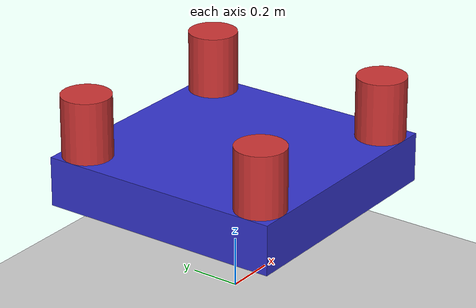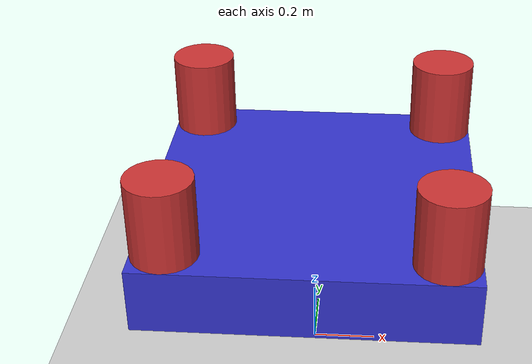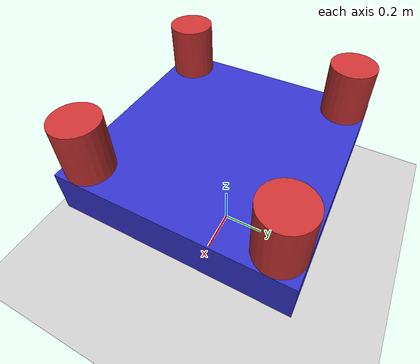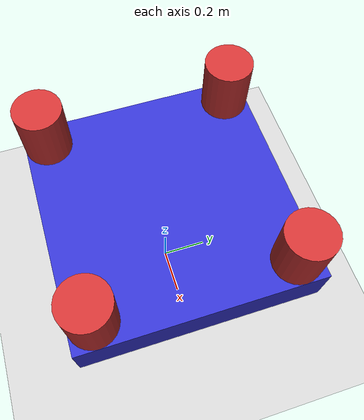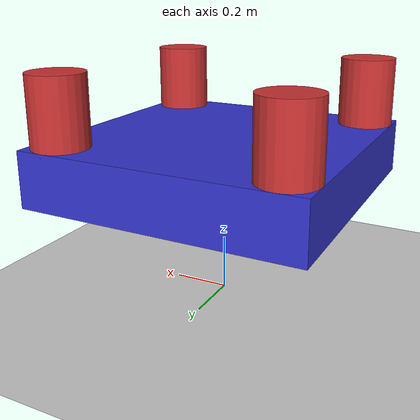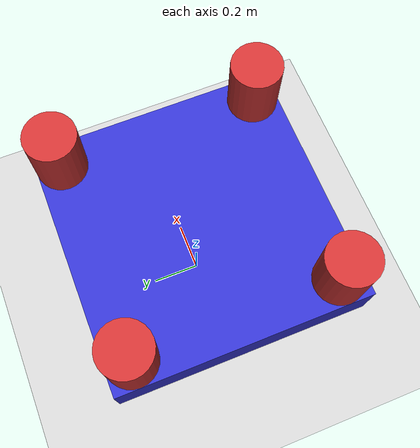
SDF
<?xml version="1.0" ?>
<sdf version="1.8">
  <world name="movable_shapes_world">

    <physics name="1ms" type="ignored">
      <max_step_size>0.001</max_step_size>
      <real_time_factor>1</real_time_factor>
      <real_time_update_rate>1000</real_time_update_rate>
    </physics>
    <gravity>0 0 -9.8</gravity>

    <plugin filename="gz-sim-physics-system" name="gz::sim::systems::Physics">
    </plugin>
    <plugin filename="gz-sim-scene-broadcaster-system" name="gz::sim::systems::SceneBroadcaster">
    </plugin>
    <plugin filename="gz-sim-apply-link-wrench-system" name="gz::sim::systems::ApplyLinkWrench">
    </plugin>

    <model name="ground_plane">
      <static>true</static>
      <link name="link">
        <collision name="collision">
          <geometry>
            <plane>
              <normal>0 0 1</normal>
              <size>100 100</size>
            </plane>
          </geometry>
        </collision>
        <visual name="visual">
          <geometry>
            <plane>
              <normal>0 0 1</normal>
              <size>100 100</size>
            </plane>
          </geometry>
          <material>
            <ambient>0.8 0.8 0.8 1</ambient>
            <diffuse>0.8 0.8 0.8 1</diffuse>
          </material>
        </visual>
      </link>
    </model>

    <!-- Quadcopter Model -->
    <model name="quadcopter">
      <pose>0 0 0.5 0 0 0</pose>

      <!-- Central Block -->
      <link name="base_link">
        <inertial>
          <mass>0.027</mass>
          <inertia>
            <ixx>1.395e-5</ixx>
            <ixy>0</ixy>
            <ixz>0</ixz>
            <iyy>1.395e-5</iyy>
            <iyz>0</iyz>
            <izz>2.173e-5</izz>
          </inertia>
        </inertial>
        <collision name="base_collision">
          <geometry>
            <box>
              <size>1 1 0.2</size>
            </box>
          </geometry>
        </collision>
        <visual name="base_visual">
          <geometry>
            <box>
              <size>1 1 0.2</size>
            </box>
          </geometry>
          <material>
            <ambient>0.2 0.2 0.8 1</ambient>
            <diffuse>0.2 0.2 0.8 1</diffuse>
          </material>
        </visual>
      </link>

      <!-- Propeller Front-Left -->
      <link name="prop_fl">
        <pose>0.4 0.4 0.15 0 0 0</pose>
        <inertial>
          <mass>1.0</mass>
          <inertia>
            <ixx>0.01</ixx>
            <ixy>0</ixy>
            <ixz>0</ixz>
            <iyy>0.01</iyy>
            <iyz>0</iyz>
            <izz>0.01</izz>
          </inertia>
        </inertial>
        <collision name="prop_fl_collision">
          <geometry>
            <cylinder>
              <radius>0.1</radius>
              <length>0.4</length>
            </cylinder>
          </geometry>
        </collision>
        <visual name="prop_fl_visual">
          <geometry>
            <cylinder>
              <radius>0.1</radius>
              <length>0.4</length>
            </cylinder>
          </geometry>
          <material>
            <ambient>0.8 0.2 0.2 1</ambient>
            <diffuse>0.8 0.2 0.2 1</diffuse>
          </material>
        </visual>
      </link>

      <!-- Propeller Front-Right -->
      <link name="prop_fr">
        <pose>0.4 -0.4 0.15 0 0 0</pose>
        <inertial>
          <mass>1.0</mass>
          <inertia>
            <ixx>0.01</ixx>
            <ixy>0</ixy>
            <ixz>0</ixz>
            <iyy>0.01</iyy>
            <iyz>0</iyz>
            <izz>0.01</izz>
          </inertia>
        </inertial>
        <collision name="prop_fr_collision">
          <geometry>
            <cylinder>
              <radius>0.1</radius>
              <length>0.4</length>
            </cylinder>
          </geometry>
        </collision>
        <visual name="prop_fr_visual">
          <geometry>
            <cylinder>
              <radius>0.1</radius>
              <length>0.4</length>
            </cylinder>
          </geometry>
          <material>
            <ambient>0.8 0.2 0.2 1</ambient>
            <diffuse>0.8 0.2 0.2 1</diffuse>
          </material>
        </visual>
      </link>

      <!-- Propeller Back-Left -->
      <link name="prop_bl">
        <pose>-0.4 0.4 0.15 0 0 0</pose>
        <inertial>
          <mass>1.0</mass>
          <inertia>
            <ixx>0.01</ixx>
            <ixy>0</ixy>
            <ixz>0</ixz>
            <iyy>0.01</iyy>
            <iyz>0</iyz>
            <izz>0.01</izz>
          </inertia>
        </inertial>
        <collision name="prop_bl_collision">
          <geometry>
            <cylinder>
              <radius>0.1</radius>
              <length>0.4</length>
            </cylinder>
          </geometry>
        </collision>
        <visual name="prop_bl_visual">
          <geometry>
            <cylinder>
              <radius>0.1</radius>
              <length>0.4</length>
            </cylinder>
          </geometry>
          <material>
            <ambient>0.8 0.2 0.2 1</ambient>
            <diffuse>0.8 0.2 0.2 1</diffuse>
          </material>
        </visual>
      </link>

      <!-- Propeller Back-Right -->
      <link name="prop_br">
        <pose>-0.4 -0.4 0.15 0 0 0</pose>
        <inertial>
          <mass>1.0</mass>
          <inertia>
            <ixx>0.01</ixx>
            <ixy>0</ixy>
            <ixz>0</ixz>
            <iyy>0.01</iyy>
            <iyz>0</iyz>
            <izz>0.01</izz>
          </inertia>
        </inertial>
        <collision name="prop_br_collision">
          <geometry>
            <cylinder>
              <radius>0.1</radius>
              <length>0.4</length>
            </cylinder>
          </geometry>
        </collision>
        <visual name="prop_br_visual">
          <geometry>
            <cylinder>
              <radius>0.1</radius>
              <length>0.4</length>
            </cylinder>
          </geometry>
          <material>
            <ambient>0.8 0.2 0.2 1</ambient>
            <diffuse>0.8 0.2 0.2 1</diffuse>
          </material>
        </visual>
      </link>

      <!-- Fixed Joints -->
      <joint name="joint_fl" type="fixed">
        <parent>base_link</parent>
        <child>prop_fl</child>
      </joint>
      <joint name="joint_fr" type="fixed">
        <parent>base_link</parent>
        <child>prop_fr</child>
      </joint>
      <joint name="joint_bl" type="fixed">
        <parent>base_link</parent>
        <child>prop_bl</child>
      </joint>
      <joint name="joint_br" type="fixed">
        <parent>base_link</parent>
        <child>prop_br</child>
      </joint>

      <!-- Pose Publisher Plugin -->
      <plugin filename="libgz-sim-pose-publisher-system.so"
              name="gz::sim::systems::PosePublisher">
        <publish_world_pose>true</publish_world_pose>
        <update_rate>50</update_rate>
      </plugin>
      <!-- Odometry Publisher Plugin -->
      <plugin filename="libgz-sim-odometry-publisher-system.so"
              name="gz::sim::systems::OdometryPublisher">
        <odom_publish_frequency>50</odom_publish_frequency>
      </plugin>

    </model>

  </world>
</sdf>
